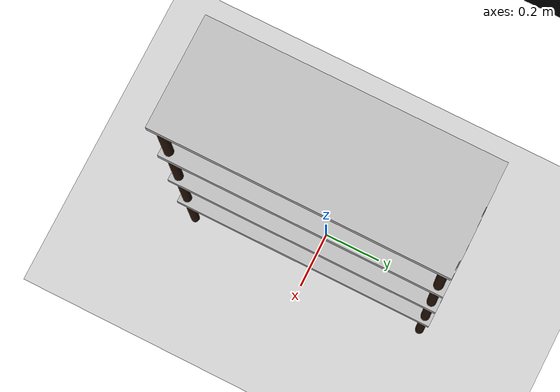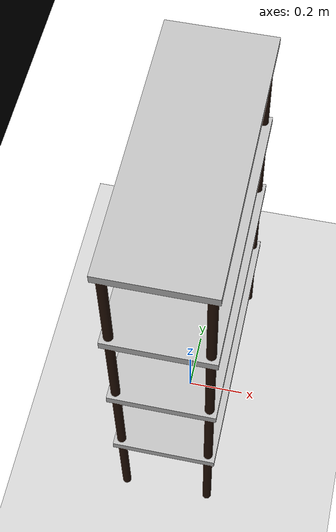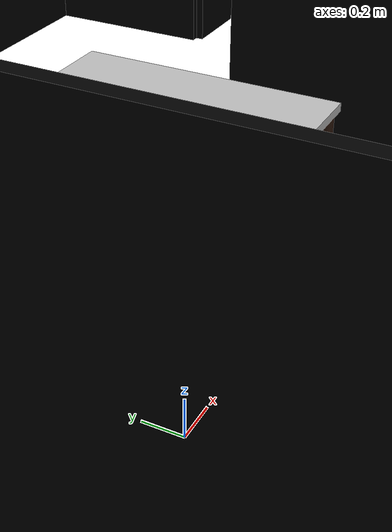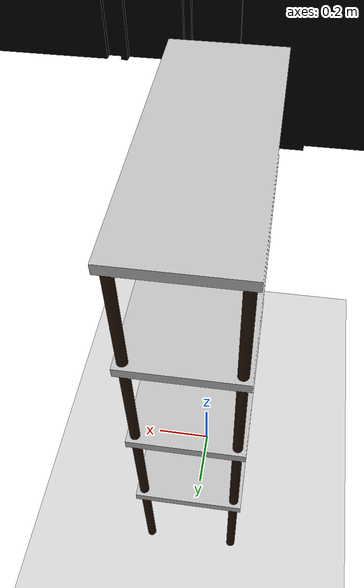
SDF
<sdf version="1.7">
 <world name="default">
  <gravity>0 0 -9.8</gravity>
  <physics name="default_physics" default="0" type="ode">
   <max_step_size>0.001</max_step_size>
   <real_time_factor>1</real_time_factor>
   <real_time_update_rate>1000</real_time_update_rate>
  </physics>
  <model name="map">
   <frame name="apna_ghar::__model__" attached_to="apna_ghar::link">
    <pose relative_to="__model__">0 0 0 0 -0 0</pose>
   </frame>
   <link name="apna_ghar::link">
    <inertial>
     <mass>1000</mass>
     <inertia>
      <ixx>840083</ixx>
      <ixy>0</ixy>
      <ixz>0</ixz>
      <iyy>475500</iyy>
      <iyz>0</iyz>
      <izz>1.30208e+06</izz>
     </inertia>
    </inertial>
    <collision name="collision">
     <geometry><mesh><uri>model://map/meshes/map.dae</uri><scale>1 1 1</scale></mesh></geometry>
     <surface>
      <friction><ode><mu>0.5</mu><mu2>0.5</mu2><fdir1>0 0 0</fdir1><slip1>0</slip1><slip2>0</slip2></ode></friction>
     </surface>
    </collision>
    <visual name="visual">
     <geometry><mesh><uri>model://map/meshes/map.dae</uri></mesh></geometry>
     <meta><layer>2</layer></meta>
    </visual>
    <pose relative_to="apna_ghar::__model__">0 0 0 0 -0 0</pose>
   </link>
   <static>1</static>
  </model>
  <model name="rack1">
   <link name="rack1_link">
    <inertial>
     <mass>1000</mass>
     <inertia>
      <ixx>840083</ixx>
      <ixy>0</ixy>
      <ixz>0</ixz>
      <iyy>475500</iyy>
      <iyz>0</iyz>
      <izz>1.30208e+06</izz>
     </inertia>
    </inertial>
    <collision name="collision">
     <geometry><mesh><uri>model://rack/meshes/rack.dae</uri><scale>1 1 1</scale></mesh></geometry>
     <surface>
      <friction><ode><mu>0.5</mu><mu2>0.5</mu2><fdir1>0 0 0</fdir1><slip1>0</slip1><slip2>0</slip2></ode></friction>
     </surface>
    </collision>
    <visual name="visual">
     <geometry><mesh><uri>model://rack/meshes/rack.dae</uri></mesh></geometry>
     <meta><layer>2</layer></meta>
    </visual>
   </link>
   <static>1</static>
  </model>
  <model name="rack2">
   <link name="rack2_link">
    <inertial>
     <mass>1000</mass>
     <inertia>
      <ixx>840083</ixx>
      <ixy>0</ixy>
      <ixz>0</ixz>
      <iyy>475500</iyy>
      <iyz>0</iyz>
      <izz>1.30208e+06</izz>
     </inertia>
    </inertial>
    <collision name="collision">
     <geometry><mesh><uri>model://rack/meshes/rack.dae</uri><scale>1 1 1</scale></mesh></geometry>
     <surface>
      <friction><ode><mu>0.5</mu><mu2>0.5</mu2><fdir1>0 0 0</fdir1><slip1>0</slip1><slip2>0</slip2></ode></friction>
     </surface>
    </collision>
    <visual name="visual">
     <geometry><mesh><uri>model://rack/meshes/rack.dae</uri></mesh></geometry>
     <meta><layer>2</layer></meta>
    </visual>
   </link>
   <static>1</static>
  </model>
  <model name="rack3">
   <link name="rack3_link">
    <inertial>
     <mass>1000</mass>
     <inertia>
      <ixx>840083</ixx>
      <ixy>0</ixy>
      <ixz>0</ixz>
      <iyy>475500</iyy>
      <iyz>0</iyz>
      <izz>1.30208e+06</izz>
     </inertia>
    </inertial>
    <collision name="collision">
     <geometry><mesh><uri>model://rack/meshes/rack.dae</uri><scale>1 1 1</scale></mesh></geometry>
     <surface>
      <friction><ode><mu>0.5</mu><mu2>0.5</mu2><fdir1>0 0 0</fdir1><slip1>0</slip1><slip2>0</slip2></ode></friction>
     </surface>
    </collision>
    <visual name="visual">
     <geometry><mesh><uri>model://rack/meshes/rack.dae</uri></mesh></geometry>
     <meta><layer>2</layer></meta>
    </visual>
   </link>
   <static>1</static>
  </model>
  <light name="Warehouse_CeilingLight_003" type="point">
   <pose>0 0 9 0 -0 0</pose>
   <diffuse>0.5 0.5 0.5 1</diffuse>
   <specular>0.2 0.2 0.2 1</specular>
   <attenuation>
    <range>80</range>
    <constant>0.3</constant>
    <linear>0.01</linear>
    <quadratic>0.001</quadratic>
   </attenuation>
   <direction>0.1 0.1 -1</direction>
   <spot><inner_angle>0</inner_angle><outer_angle>0</outer_angle><falloff>0</falloff></spot>
  </light>
  <magnetic_field>6e-06 2.3e-05 -4.2e-05</magnetic_field>
  <atmosphere type="adiabatic"/>
  <scene><ambient>0.4 0.4 0.4 1</ambient><background>0.7 0.7 0.7 1</background><shadows>1</shadows></scene>
  <audio><device>default</device></audio>
  <spherical_coordinates>
   <surface_model>EARTH_WGS84</surface_model>
   <latitude_deg>0</latitude_deg>
   <longitude_deg>0</longitude_deg>
   <elevation>0</elevation>
   <heading_deg>0</heading_deg>
  </spherical_coordinates>
  <model name="ground_plane">
   <static>1</static>
   <link name="link">
    <collision name="collision">
     <geometry><plane><normal>0 0 1</normal><size>100 100</size></plane></geometry>
     <surface><friction><ode><mu>100</mu><mu2>50</mu2></ode></friction></surface>
    </collision>
    <visual name="visual">
     <cast_shadows>0</cast_shadows>
     <geometry><plane><normal>0 0 1</normal><size>100 100</size></plane></geometry>
     <material>
      <script><uri>file://media/materials/scripts/gazebo.material</uri><name>Gazebo/Grey</name></script>
     </material>
    </visual>
   </link>
   <pose>0.673858 -0.6356 0 0 -0 0</pose>
  </model>
 </world>
</sdf>
